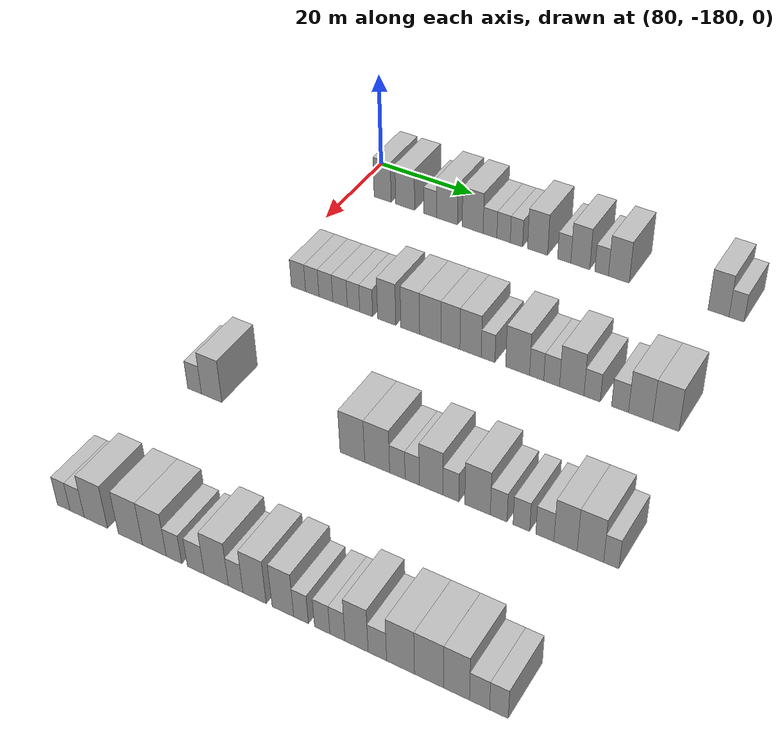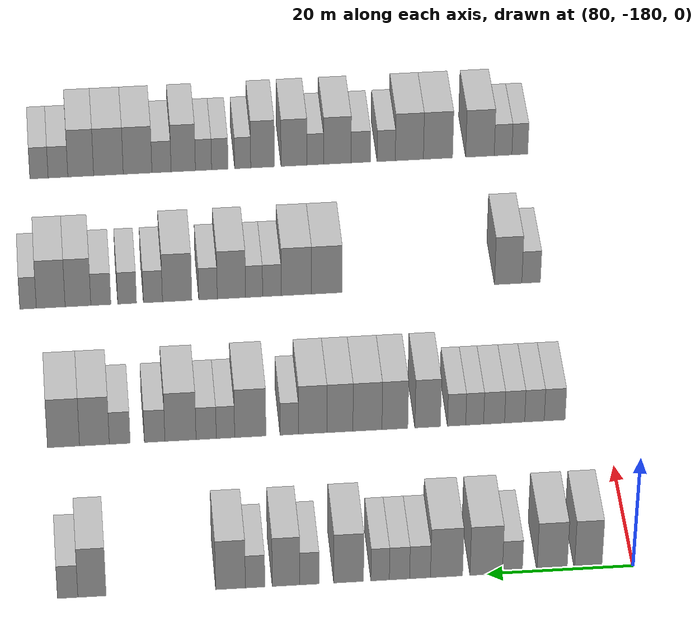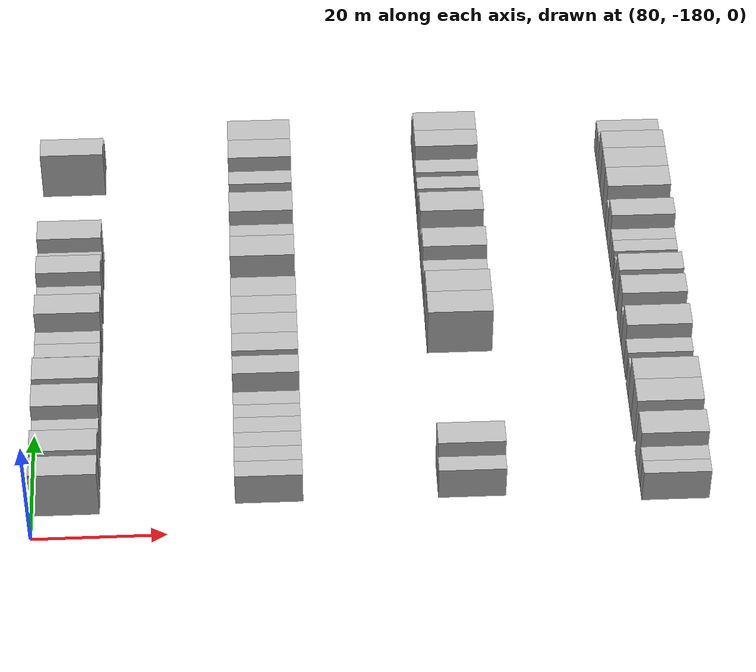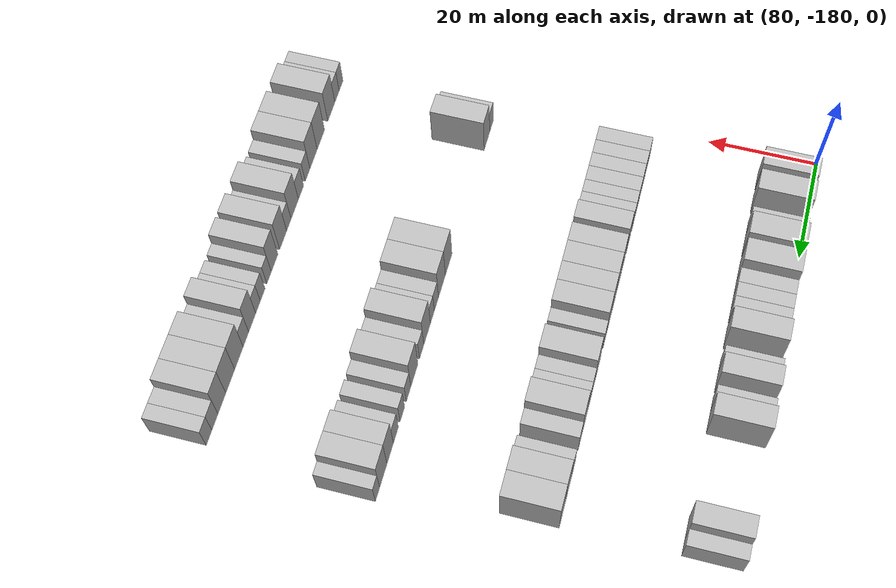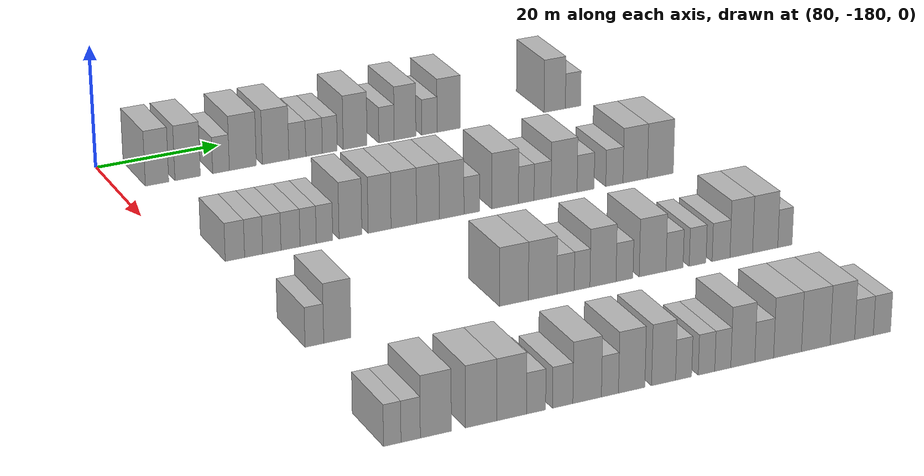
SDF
<sdf version="1.6">
 <world name="default">
  <model name="building_534">
   <static>1</static>
   <pose>85.0000 -173.7555 0 0.000000 0.000000 0.000000</pose>
   <link name="link">
    <pose>0 0 4.50 0 0 0</pose>
    <collision name="collision"><geometry><box><size>10.0000 3.7545 9.0000</size></box></geometry></collision>
    <visual name="visual">
     <cast_shadows>0</cast_shadows>
     <geometry><box><size>10.0000 3.7545 9.0000</size></box></geometry>
     <material>
      <script>
       <uri>model://HANNAS_wall/materials/scripts</uri>
       <uri>model://HANNAS_wall/materials/textures</uri>
       <name>vrc/HANNAS_wall</name>
      </script>
     </material>
    </visual>
   </link>
  </model>
  <model name="building_535">
   <static>1</static>
   <pose>85.0000 -168.8185 0 0.000000 0.000000 0.000000</pose>
   <link name="link">
    <pose>0 0 4.50 0 0 0</pose>
    <collision name="collision"><geometry><box><size>10.0000 4.1195 9.0000</size></box></geometry></collision>
    <visual name="visual">
     <cast_shadows>0</cast_shadows>
     <geometry><box><size>10.0000 4.1195 9.0000</size></box></geometry>
     <material>
      <script>
       <uri>model://HANNAS_wall/materials/scripts</uri>
       <uri>model://HANNAS_wall/materials/textures</uri>
       <name>vrc/HANNAS_wall</name>
      </script>
     </material>
    </visual>
   </link>
  </model>
  <model name="building_536">
   <static>1</static>
   <pose>85.0000 -163.3933 0 0.000000 0.000000 0.000000</pose>
   <link name="link">
    <pose>0 0 3.00 0 0 0</pose>
    <collision name="collision"><geometry><box><size>10.0000 2.7308 6.0000</size></box></geometry></collision>
    <visual name="visual">
     <cast_shadows>0</cast_shadows>
     <geometry><box><size>10.0000 2.7308 6.0000</size></box></geometry>
     <material>
      <script>
       <uri>model://HANNAS_wall/materials/scripts</uri>
       <uri>model://HANNAS_wall/materials/textures</uri>
       <name>vrc/HANNAS_wall</name>
      </script>
     </material>
    </visual>
   </link>
  </model>
  <model name="building_537">
   <static>1</static>
   <pose>85.0000 -159.8142 0 0.000000 0.000000 0.000000</pose>
   <link name="link">
    <pose>0 0 4.50 0 0 0</pose>
    <collision name="collision"><geometry><box><size>10.0000 4.4275 9.0000</size></box></geometry></collision>
    <visual name="visual">
     <cast_shadows>0</cast_shadows>
     <geometry><box><size>10.0000 4.4275 9.0000</size></box></geometry>
     <material>
      <script>
       <uri>model://HANNAS_wall/materials/scripts</uri>
       <uri>model://HANNAS_wall/materials/textures</uri>
       <name>vrc/HANNAS_wall</name>
      </script>
     </material>
    </visual>
   </link>
  </model>
  <model name="building_538">
   <static>1</static>
   <pose>85.0000 -154.4077 0 0.000000 0.000000 0.000000</pose>
   <link name="link">
    <pose>0 0 4.50 0 0 0</pose>
    <collision name="collision"><geometry><box><size>10.0000 4.3855 9.0000</size></box></geometry></collision>
    <visual name="visual">
     <cast_shadows>0</cast_shadows>
     <geometry><box><size>10.0000 4.3855 9.0000</size></box></geometry>
     <material>
      <script>
       <uri>model://HANNAS_wall/materials/scripts</uri>
       <uri>model://HANNAS_wall/materials/textures</uri>
       <name>vrc/HANNAS_wall</name>
      </script>
     </material>
    </visual>
   </link>
  </model>
  <model name="building_539">
   <static>1</static>
   <pose>85.0000 -150.7962 0 0.000000 0.000000 0.000000</pose>
   <link name="link">
    <pose>0 0 3.00 0 0 0</pose>
    <collision name="collision"><geometry><box><size>10.0000 2.8373 6.0000</size></box></geometry></collision>
    <visual name="visual">
     <cast_shadows>0</cast_shadows>
     <geometry><box><size>10.0000 2.8373 6.0000</size></box></geometry>
     <material>
      <script>
       <uri>model://HANNAS_wall/materials/scripts</uri>
       <uri>model://HANNAS_wall/materials/textures</uri>
       <name>vrc/HANNAS_wall</name>
      </script>
     </material>
    </visual>
   </link>
  </model>
  <model name="building_540">
   <static>1</static>
   <pose>85.0000 -147.9958 0 0.000000 0.000000 0.000000</pose>
   <link name="link">
    <pose>0 0 3.00 0 0 0</pose>
    <collision name="collision"><geometry><box><size>10.0000 2.7636 6.0000</size></box></geometry></collision>
    <visual name="visual">
     <cast_shadows>0</cast_shadows>
     <geometry><box><size>10.0000 2.7636 6.0000</size></box></geometry>
     <material>
      <script>
       <uri>model://HANNAS_wall/materials/scripts</uri>
       <uri>model://HANNAS_wall/materials/textures</uri>
       <name>vrc/HANNAS_wall</name>
      </script>
     </material>
    </visual>
   </link>
  </model>
  <model name="building_541">
   <static>1</static>
   <pose>85.0000 -145.3595 0 0.000000 0.000000 0.000000</pose>
   <link name="link">
    <pose>0 0 3.00 0 0 0</pose>
    <collision name="collision"><geometry><box><size>10.0000 2.5090 6.0000</size></box></geometry></collision>
    <visual name="visual">
     <cast_shadows>0</cast_shadows>
     <geometry><box><size>10.0000 2.5090 6.0000</size></box></geometry>
     <material>
      <script>
       <uri>model://HANNAS_wall/materials/scripts</uri>
       <uri>model://HANNAS_wall/materials/textures</uri>
       <name>vrc/HANNAS_wall</name>
      </script>
     </material>
    </visual>
   </link>
  </model>
  <model name="building_542">
   <static>1</static>
   <pose>85.0000 -141.0785 0 0.000000 0.000000 0.000000</pose>
   <link name="link">
    <pose>0 0 4.50 0 0 0</pose>
    <collision name="collision"><geometry><box><size>10.0000 4.0530 9.0000</size></box></geometry></collision>
    <visual name="visual">
     <cast_shadows>0</cast_shadows>
     <geometry><box><size>10.0000 4.0530 9.0000</size></box></geometry>
     <material>
      <script>
       <uri>model://HANNAS_wall/materials/scripts</uri>
       <uri>model://HANNAS_wall/materials/textures</uri>
       <name>vrc/HANNAS_wall</name>
      </script>
     </material>
    </visual>
   </link>
  </model>
  <model name="building_543">
   <static>1</static>
   <pose>85.0000 -135.7409 0 0.000000 0.000000 0.000000</pose>
   <link name="link">
    <pose>0 0 3.00 0 0 0</pose>
    <collision name="collision"><geometry><box><size>10.0000 2.6222 6.0000</size></box></geometry></collision>
    <visual name="visual">
     <cast_shadows>0</cast_shadows>
     <geometry><box><size>10.0000 2.6222 6.0000</size></box></geometry>
     <material>
      <script>
       <uri>model://HANNAS_wall/materials/scripts</uri>
       <uri>model://HANNAS_wall/materials/textures</uri>
       <name>vrc/HANNAS_wall</name>
      </script>
     </material>
    </visual>
   </link>
  </model>
  <model name="building_544">
   <static>1</static>
   <pose>85.0000 -132.5642 0 0.000000 0.000000 0.000000</pose>
   <link name="link">
    <pose>0 0 4.50 0 0 0</pose>
    <collision name="collision"><geometry><box><size>10.0000 3.7311 9.0000</size></box></geometry></collision>
    <visual name="visual">
     <cast_shadows>0</cast_shadows>
     <geometry><box><size>10.0000 3.7311 9.0000</size></box></geometry>
     <material>
      <script>
       <uri>model://HANNAS_wall/materials/scripts</uri>
       <uri>model://HANNAS_wall/materials/textures</uri>
       <name>vrc/HANNAS_wall</name>
      </script>
     </material>
    </visual>
   </link>
  </model>
  <model name="building_545">
   <static>1</static>
   <pose>85.0000 -128.3770 0 0.000000 0.000000 0.000000</pose>
   <link name="link">
    <pose>0 0 3.00 0 0 0</pose>
    <collision name="collision"><geometry><box><size>10.0000 2.6434 6.0000</size></box></geometry></collision>
    <visual name="visual">
     <cast_shadows>0</cast_shadows>
     <geometry><box><size>10.0000 2.6434 6.0000</size></box></geometry>
     <material>
      <script>
       <uri>model://HANNAS_wall/materials/scripts</uri>
       <uri>model://HANNAS_wall/materials/textures</uri>
       <name>vrc/HANNAS_wall</name>
      </script>
     </material>
    </visual>
   </link>
  </model>
  <model name="building_546">
   <static>1</static>
   <pose>85.0000 -125.0420 0 0.000000 0.000000 0.000000</pose>
   <link name="link">
    <pose>0 0 4.50 0 0 0</pose>
    <collision name="collision"><geometry><box><size>10.0000 4.0265 9.0000</size></box></geometry></collision>
    <visual name="visual">
     <cast_shadows>0</cast_shadows>
     <geometry><box><size>10.0000 4.0265 9.0000</size></box></geometry>
     <material>
      <script>
       <uri>model://HANNAS_wall/materials/scripts</uri>
       <uri>model://HANNAS_wall/materials/textures</uri>
       <name>vrc/HANNAS_wall</name>
      </script>
     </material>
    </visual>
   </link>
  </model>
  <model name="building_547">
   <static>1</static>
   <pose>85.0000 -106.3076 0 0.000000 0.000000 0.000000</pose>
   <link name="link">
    <pose>0 0 4.50 0 0 0</pose>
    <collision name="collision"><geometry><box><size>10.0000 3.8141 9.0000</size></box></geometry></collision>
    <visual name="visual">
     <cast_shadows>0</cast_shadows>
     <geometry><box><size>10.0000 3.8141 9.0000</size></box></geometry>
     <material>
      <script>
       <uri>model://HANNAS_wall/materials/scripts</uri>
       <uri>model://HANNAS_wall/materials/textures</uri>
       <name>vrc/HANNAS_wall</name>
      </script>
     </material>
    </visual>
   </link>
  </model>
  <model name="building_548">
   <static>1</static>
   <pose>85.0000 -103.0252 0 0.000000 0.000000 0.000000</pose>
   <link name="link">
    <pose>0 0 3.00 0 0 0</pose>
    <collision name="collision"><geometry><box><size>10.0000 2.7507 6.0000</size></box></geometry></collision>
    <visual name="visual">
     <cast_shadows>0</cast_shadows>
     <geometry><box><size>10.0000 2.7507 6.0000</size></box></geometry>
     <material>
      <script>
       <uri>model://HANNAS_wall/materials/scripts</uri>
       <uri>model://HANNAS_wall/materials/textures</uri>
       <name>vrc/HANNAS_wall</name>
      </script>
     </material>
    </visual>
   </link>
  </model>
  <model name="building_763">
   <static>1</static>
   <pose>115.0000 -172.9083 0 0.000000 0.000000 0.000000</pose>
   <link name="link">
    <pose>0 0 3.00 0 0 0</pose>
    <collision name="collision"><geometry><box><size>10.0000 2.9768 6.0000</size></box></geometry></collision>
    <visual name="visual">
     <cast_shadows>0</cast_shadows>
     <geometry><box><size>10.0000 2.9768 6.0000</size></box></geometry>
     <material>
      <script>
       <uri>model://HANNAS_wall/materials/scripts</uri>
       <uri>model://HANNAS_wall/materials/textures</uri>
       <name>vrc/HANNAS_wall</name>
      </script>
     </material>
    </visual>
   </link>
  </model>
  <model name="building_764">
   <static>1</static>
   <pose>115.0000 -170.0275 0 0.000000 0.000000 0.000000</pose>
   <link name="link">
    <pose>0 0 3.00 0 0 0</pose>
    <collision name="collision"><geometry><box><size>10.0000 2.7848 6.0000</size></box></geometry></collision>
    <visual name="visual">
     <cast_shadows>0</cast_shadows>
     <geometry><box><size>10.0000 2.7848 6.0000</size></box></geometry>
     <material>
      <script>
       <uri>model://HANNAS_wall/materials/scripts</uri>
       <uri>model://HANNAS_wall/materials/textures</uri>
       <name>vrc/HANNAS_wall</name>
      </script>
     </material>
    </visual>
   </link>
  </model>
  <model name="building_765">
   <static>1</static>
   <pose>115.0000 -167.2041 0 0.000000 0.000000 0.000000</pose>
   <link name="link">
    <pose>0 0 3.00 0 0 0</pose>
    <collision name="collision"><geometry><box><size>10.0000 2.8619 6.0000</size></box></geometry></collision>
    <visual name="visual">
     <cast_shadows>0</cast_shadows>
     <geometry><box><size>10.0000 2.8619 6.0000</size></box></geometry>
     <material>
      <script>
       <uri>model://HANNAS_wall/materials/scripts</uri>
       <uri>model://HANNAS_wall/materials/textures</uri>
       <name>vrc/HANNAS_wall</name>
      </script>
     </material>
    </visual>
   </link>
  </model>
  <model name="building_766">
   <static>1</static>
   <pose>115.0000 -164.2832 0 0.000000 0.000000 0.000000</pose>
   <link name="link">
    <pose>0 0 3.00 0 0 0</pose>
    <collision name="collision"><geometry><box><size>10.0000 2.9800 6.0000</size></box></geometry></collision>
    <visual name="visual">
     <cast_shadows>0</cast_shadows>
     <geometry><box><size>10.0000 2.9800 6.0000</size></box></geometry>
     <material>
      <script>
       <uri>model://HANNAS_wall/materials/scripts</uri>
       <uri>model://HANNAS_wall/materials/textures</uri>
       <name>vrc/HANNAS_wall</name>
      </script>
     </material>
    </visual>
   </link>
  </model>
  <model name="building_767">
   <static>1</static>
   <pose>115.0000 -161.5236 0 0.000000 0.000000 0.000000</pose>
   <link name="link">
    <pose>0 0 3.00 0 0 0</pose>
    <collision name="collision"><geometry><box><size>10.0000 2.5392 6.0000</size></box></geometry></collision>
    <visual name="visual">
     <cast_shadows>0</cast_shadows>
     <geometry><box><size>10.0000 2.5392 6.0000</size></box></geometry>
     <material>
      <script>
       <uri>model://HANNAS_wall/materials/scripts</uri>
       <uri>model://HANNAS_wall/materials/textures</uri>
       <name>vrc/HANNAS_wall</name>
      </script>
     </material>
    </visual>
   </link>
  </model>
  <model name="building_768">
   <static>1</static>
   <pose>115.0000 -158.9571 0 0.000000 0.000000 0.000000</pose>
   <link name="link">
    <pose>0 0 3.00 0 0 0</pose>
    <collision name="collision"><geometry><box><size>10.0000 2.5939 6.0000</size></box></geometry></collision>
    <visual name="visual">
     <cast_shadows>0</cast_shadows>
     <geometry><box><size>10.0000 2.5939 6.0000</size></box></geometry>
     <material>
      <script>
       <uri>model://HANNAS_wall/materials/scripts</uri>
       <uri>model://HANNAS_wall/materials/textures</uri>
       <name>vrc/HANNAS_wall</name>
      </script>
     </material>
    </visual>
   </link>
  </model>
  <model name="building_769">
   <static>1</static>
   <pose>115.0000 -154.8506 0 0.000000 0.000000 0.000000</pose>
   <link name="link">
    <pose>0 0 4.50 0 0 0</pose>
    <collision name="collision"><geometry><box><size>10.0000 3.6191 9.0000</size></box></geometry></collision>
    <visual name="visual">
     <cast_shadows>0</cast_shadows>
     <geometry><box><size>10.0000 3.6191 9.0000</size></box></geometry>
     <material>
      <script>
       <uri>model://HANNAS_wall/materials/scripts</uri>
       <uri>model://HANNAS_wall/materials/textures</uri>
       <name>vrc/HANNAS_wall</name>
      </script>
     </material>
    </visual>
   </link>
  </model>
  <model name="building_770">
   <static>1</static>
   <pose>115.0000 -150.2071 0 0.000000 0.000000 0.000000</pose>
   <link name="link">
    <pose>0 0 4.50 0 0 0</pose>
    <collision name="collision"><geometry><box><size>10.0000 3.6678 9.0000</size></box></geometry></collision>
    <visual name="visual">
     <cast_shadows>0</cast_shadows>
     <geometry><box><size>10.0000 3.6678 9.0000</size></box></geometry>
     <material>
      <script>
       <uri>model://HANNAS_wall/materials/scripts</uri>
       <uri>model://HANNAS_wall/materials/textures</uri>
       <name>vrc/HANNAS_wall</name>
      </script>
     </material>
    </visual>
   </link>
  </model>
  <model name="building_771">
   <static>1</static>
   <pose>115.0000 -146.3153 0 0.000000 0.000000 0.000000</pose>
   <link name="link">
    <pose>0 0 4.50 0 0 0</pose>
    <collision name="collision"><geometry><box><size>10.0000 4.1157 9.0000</size></box></geometry></collision>
    <visual name="visual">
     <cast_shadows>0</cast_shadows>
     <geometry><box><size>10.0000 4.1157 9.0000</size></box></geometry>
     <material>
      <script>
       <uri>model://HANNAS_wall/materials/scripts</uri>
       <uri>model://HANNAS_wall/materials/textures</uri>
       <name>vrc/HANNAS_wall</name>
      </script>
     </material>
    </visual>
   </link>
  </model>
  <model name="building_772">
   <static>1</static>
   <pose>115.0000 -142.4203 0 0.000000 0.000000 0.000000</pose>
   <link name="link">
    <pose>0 0 4.50 0 0 0</pose>
    <collision name="collision"><geometry><box><size>10.0000 3.6743 9.0000</size></box></geometry></collision>
    <visual name="visual">
     <cast_shadows>0</cast_shadows>
     <geometry><box><size>10.0000 3.6743 9.0000</size></box></geometry>
     <material>
      <script>
       <uri>model://HANNAS_wall/materials/scripts</uri>
       <uri>model://HANNAS_wall/materials/textures</uri>
       <name>vrc/HANNAS_wall</name>
      </script>
     </material>
    </visual>
   </link>
  </model>
  <model name="building_773">
   <static>1</static>
   <pose>115.0000 -138.5661 0 0.000000 0.000000 0.000000</pose>
   <link name="link">
    <pose>0 0 4.50 0 0 0</pose>
    <collision name="collision"><geometry><box><size>10.0000 4.0339 9.0000</size></box></geometry></collision>
    <visual name="visual">
     <cast_shadows>0</cast_shadows>
     <geometry><box><size>10.0000 4.0339 9.0000</size></box></geometry>
     <material>
      <script>
       <uri>model://HANNAS_wall/materials/scripts</uri>
       <uri>model://HANNAS_wall/materials/textures</uri>
       <name>vrc/HANNAS_wall</name>
      </script>
     </material>
    </visual>
   </link>
  </model>
  <model name="building_774">
   <static>1</static>
   <pose>115.0000 -135.2565 0 0.000000 0.000000 0.000000</pose>
   <link name="link">
    <pose>0 0 3.00 0 0 0</pose>
    <collision name="collision"><geometry><box><size>10.0000 2.5853 6.0000</size></box></geometry></collision>
    <visual name="visual">
     <cast_shadows>0</cast_shadows>
     <geometry><box><size>10.0000 2.5853 6.0000</size></box></geometry>
     <material>
      <script>
       <uri>model://HANNAS_wall/materials/scripts</uri>
       <uri>model://HANNAS_wall/materials/textures</uri>
       <name>vrc/HANNAS_wall</name>
      </script>
     </material>
    </visual>
   </link>
  </model>
  <model name="building_775">
   <static>1</static>
   <pose>115.0000 -129.7553 0 0.000000 0.000000 0.000000</pose>
   <link name="link">
    <pose>0 0 4.50 0 0 0</pose>
    <collision name="collision"><geometry><box><size>10.0000 4.4172 9.0000</size></box></geometry></collision>
    <visual name="visual">
     <cast_shadows>0</cast_shadows>
     <geometry><box><size>10.0000 4.4172 9.0000</size></box></geometry>
     <material>
      <script>
       <uri>model://HANNAS_wall/materials/scripts</uri>
       <uri>model://HANNAS_wall/materials/textures</uri>
       <name>vrc/HANNAS_wall</name>
      </script>
     </material>
    </visual>
   </link>
  </model>
  <model name="building_776">
   <static>1</static>
   <pose>115.0000 -126.2490 0 0.000000 0.000000 0.000000</pose>
   <link name="link">
    <pose>0 0 3.00 0 0 0</pose>
    <collision name="collision"><geometry><box><size>10.0000 2.5955 6.0000</size></box></geometry></collision>
    <visual name="visual">
     <cast_shadows>0</cast_shadows>
     <geometry><box><size>10.0000 2.5955 6.0000</size></box></geometry>
     <material>
      <script>
       <uri>model://HANNAS_wall/materials/scripts</uri>
       <uri>model://HANNAS_wall/materials/textures</uri>
       <name>vrc/HANNAS_wall</name>
      </script>
     </material>
    </visual>
   </link>
  </model>
  <model name="building_777">
   <static>1</static>
   <pose>115.0000 -123.5253 0 0.000000 0.000000 0.000000</pose>
   <link name="link">
    <pose>0 0 3.00 0 0 0</pose>
    <collision name="collision"><geometry><box><size>10.0000 2.8518 6.0000</size></box></geometry></collision>
    <visual name="visual">
     <cast_shadows>0</cast_shadows>
     <geometry><box><size>10.0000 2.8518 6.0000</size></box></geometry>
     <material>
      <script>
       <uri>model://HANNAS_wall/materials/scripts</uri>
       <uri>model://HANNAS_wall/materials/textures</uri>
       <name>vrc/HANNAS_wall</name>
      </script>
     </material>
    </visual>
   </link>
  </model>
  <model name="building_778">
   <static>1</static>
   <pose>115.0000 -119.9063 0 0.000000 0.000000 0.000000</pose>
   <link name="link">
    <pose>0 0 4.50 0 0 0</pose>
    <collision name="collision"><geometry><box><size>10.0000 4.3862 9.0000</size></box></geometry></collision>
    <visual name="visual">
     <cast_shadows>0</cast_shadows>
     <geometry><box><size>10.0000 4.3862 9.0000</size></box></geometry>
     <material>
      <script>
       <uri>model://HANNAS_wall/materials/scripts</uri>
       <uri>model://HANNAS_wall/materials/textures</uri>
       <name>vrc/HANNAS_wall</name>
      </script>
     </material>
    </visual>
   </link>
  </model>
  <model name="building_779">
   <static>1</static>
   <pose>115.0000 -116.2729 0 0.000000 0.000000 0.000000</pose>
   <link name="link">
    <pose>0 0 3.00 0 0 0</pose>
    <collision name="collision"><geometry><box><size>10.0000 2.8807 6.0000</size></box></geometry></collision>
    <visual name="visual">
     <cast_shadows>0</cast_shadows>
     <geometry><box><size>10.0000 2.8807 6.0000</size></box></geometry>
     <material>
      <script>
       <uri>model://HANNAS_wall/materials/scripts</uri>
       <uri>model://HANNAS_wall/materials/textures</uri>
       <name>vrc/HANNAS_wall</name>
      </script>
     </material>
    </visual>
   </link>
  </model>
  <model name="building_780">
   <static>1</static>
   <pose>115.0000 -111.3629 0 0.000000 0.000000 0.000000</pose>
   <link name="link">
    <pose>0 0 3.00 0 0 0</pose>
    <collision name="collision"><geometry><box><size>10.0000 2.9392 6.0000</size></box></geometry></collision>
    <visual name="visual">
     <cast_shadows>0</cast_shadows>
     <geometry><box><size>10.0000 2.9392 6.0000</size></box></geometry>
     <material>
      <script>
       <uri>model://HANNAS_wall/materials/scripts</uri>
       <uri>model://HANNAS_wall/materials/textures</uri>
       <name>vrc/HANNAS_wall</name>
      </script>
     </material>
    </visual>
   </link>
  </model>
  <model name="building_781">
   <static>1</static>
   <pose>115.0000 -107.8028 0 0.000000 0.000000 0.000000</pose>
   <link name="link">
    <pose>0 0 4.50 0 0 0</pose>
    <collision name="collision"><geometry><box><size>10.0000 4.1810 9.0000</size></box></geometry></collision>
    <visual name="visual">
     <cast_shadows>0</cast_shadows>
     <geometry><box><size>10.0000 4.1810 9.0000</size></box></geometry>
     <material>
      <script>
       <uri>model://HANNAS_wall/materials/scripts</uri>
       <uri>model://HANNAS_wall/materials/textures</uri>
       <name>vrc/HANNAS_wall</name>
      </script>
     </material>
    </visual>
   </link>
  </model>
  <model name="building_782">
   <static>1</static>
   <pose>115.0000 -103.4639 0 0.000000 0.000000 0.000000</pose>
   <link name="link">
    <pose>0 0 4.50 0 0 0</pose>
    <collision name="collision"><geometry><box><size>10.0000 4.4968 9.0000</size></box></geometry></collision>
    <visual name="visual">
     <cast_shadows>0</cast_shadows>
     <geometry><box><size>10.0000 4.4968 9.0000</size></box></geometry>
     <material>
      <script>
       <uri>model://HANNAS_wall/materials/scripts</uri>
       <uri>model://HANNAS_wall/materials/textures</uri>
       <name>vrc/HANNAS_wall</name>
      </script>
     </material>
    </visual>
   </link>
  </model>
  <model name="building_996">
   <static>1</static>
   <pose>145.0000 -173.1514 0 0.000000 0.000000 0.000000</pose>
   <link name="link">
    <pose>0 0 3.00 0 0 0</pose>
    <collision name="collision"><geometry><box><size>10.0000 2.7469 6.0000</size></box></geometry></collision>
    <visual name="visual">
     <cast_shadows>0</cast_shadows>
     <geometry><box><size>10.0000 2.7469 6.0000</size></box></geometry>
     <material>
      <script>
       <uri>model://HANNAS_wall/materials/scripts</uri>
       <uri>model://HANNAS_wall/materials/textures</uri>
       <name>vrc/HANNAS_wall</name>
      </script>
     </material>
    </visual>
   </link>
  </model>
  <model name="building_997">
   <static>1</static>
   <pose>145.0000 -169.7583 0 0.000000 0.000000 0.000000</pose>
   <link name="link">
    <pose>0 0 4.50 0 0 0</pose>
    <collision name="collision"><geometry><box><size>10.0000 4.0393 9.0000</size></box></geometry></collision>
    <visual name="visual">
     <cast_shadows>0</cast_shadows>
     <geometry><box><size>10.0000 4.0393 9.0000</size></box></geometry>
     <material>
      <script>
       <uri>model://HANNAS_wall/materials/scripts</uri>
       <uri>model://HANNAS_wall/materials/textures</uri>
       <name>vrc/HANNAS_wall</name>
      </script>
     </material>
    </visual>
   </link>
  </model>
  <model name="building_998">
   <static>1</static>
   <pose>145.0000 -143.0257 0 0.000000 0.000000 0.000000</pose>
   <link name="link">
    <pose>0 0 4.50 0 0 0</pose>
    <collision name="collision"><geometry><box><size>10.0000 4.4754 9.0000</size></box></geometry></collision>
    <visual name="visual">
     <cast_shadows>0</cast_shadows>
     <geometry><box><size>10.0000 4.4754 9.0000</size></box></geometry>
     <material>
      <script>
       <uri>model://HANNAS_wall/materials/scripts</uri>
       <uri>model://HANNAS_wall/materials/textures</uri>
       <name>vrc/HANNAS_wall</name>
      </script>
     </material>
    </visual>
   </link>
  </model>
  <model name="building_999">
   <static>1</static>
   <pose>145.0000 -138.5525 0 0.000000 0.000000 0.000000</pose>
   <link name="link">
    <pose>0 0 4.50 0 0 0</pose>
    <collision name="collision"><geometry><box><size>10.0000 4.4709 9.0000</size></box></geometry></collision>
    <visual name="visual">
     <cast_shadows>0</cast_shadows>
     <geometry><box><size>10.0000 4.4709 9.0000</size></box></geometry>
     <material>
      <script>
       <uri>model://HANNAS_wall/materials/scripts</uri>
       <uri>model://HANNAS_wall/materials/textures</uri>
       <name>vrc/HANNAS_wall</name>
      </script>
     </material>
    </visual>
   </link>
  </model>
  <model name="building_1000">
   <static>1</static>
   <pose>145.0000 -134.9532 0 0.000000 0.000000 0.000000</pose>
   <link name="link">
    <pose>0 0 3.00 0 0 0</pose>
    <collision name="collision"><geometry><box><size>10.0000 2.7277 6.0000</size></box></geometry></collision>
    <visual name="visual">
     <cast_shadows>0</cast_shadows>
     <geometry><box><size>10.0000 2.7277 6.0000</size></box></geometry>
     <material>
      <script>
       <uri>model://HANNAS_wall/materials/scripts</uri>
       <uri>model://HANNAS_wall/materials/textures</uri>
       <name>vrc/HANNAS_wall</name>
      </script>
     </material>
    </visual>
   </link>
  </model>
  <model name="building_1001">
   <static>1</static>
   <pose>145.0000 -132.3440 0 0.000000 0.000000 0.000000</pose>
   <link name="link">
    <pose>0 0 3.00 0 0 0</pose>
    <collision name="collision"><geometry><box><size>10.0000 2.4908 6.0000</size></box></geometry></collision>
    <visual name="visual">
     <cast_shadows>0</cast_shadows>
     <geometry><box><size>10.0000 2.4908 6.0000</size></box></geometry>
     <material>
      <script>
       <uri>model://HANNAS_wall/materials/scripts</uri>
       <uri>model://HANNAS_wall/materials/textures</uri>
       <name>vrc/HANNAS_wall</name>
      </script>
     </material>
    </visual>
   </link>
  </model>
  <model name="building_1002">
   <static>1</static>
   <pose>145.0000 -129.0224 0 0.000000 0.000000 0.000000</pose>
   <link name="link">
    <pose>0 0 4.50 0 0 0</pose>
    <collision name="collision"><geometry><box><size>10.0000 4.1523 9.0000</size></box></geometry></collision>
    <visual name="visual">
     <cast_shadows>0</cast_shadows>
     <geometry><box><size>10.0000 4.1523 9.0000</size></box></geometry>
     <material>
      <script>
       <uri>model://HANNAS_wall/materials/scripts</uri>
       <uri>model://HANNAS_wall/materials/textures</uri>
       <name>vrc/HANNAS_wall</name>
      </script>
     </material>
    </visual>
   </link>
  </model>
  <model name="building_1003">
   <static>1</static>
   <pose>145.0000 -125.5873 0 0.000000 0.000000 0.000000</pose>
   <link name="link">
    <pose>0 0 3.00 0 0 0</pose>
    <collision name="collision"><geometry><box><size>10.0000 2.7180 6.0000</size></box></geometry></collision>
    <visual name="visual">
     <cast_shadows>0</cast_shadows>
     <geometry><box><size>10.0000 2.7180 6.0000</size></box></geometry>
     <material>
      <script>
       <uri>model://HANNAS_wall/materials/scripts</uri>
       <uri>model://HANNAS_wall/materials/textures</uri>
       <name>vrc/HANNAS_wall</name>
      </script>
     </material>
    </visual>
   </link>
  </model>
  <model name="building_1004">
   <static>1</static>
   <pose>145.0000 -121.0702 0 0.000000 0.000000 0.000000</pose>
   <link name="link">
    <pose>0 0 4.50 0 0 0</pose>
    <collision name="collision"><geometry><box><size>10.0000 4.3160 9.0000</size></box></geometry></collision>
    <visual name="visual">
     <cast_shadows>0</cast_shadows>
     <geometry><box><size>10.0000 4.3160 9.0000</size></box></geometry>
     <material>
      <script>
       <uri>model://HANNAS_wall/materials/scripts</uri>
       <uri>model://HANNAS_wall/materials/textures</uri>
       <name>vrc/HANNAS_wall</name>
      </script>
     </material>
    </visual>
   </link>
  </model>
  <model name="building_1005">
   <static>1</static>
   <pose>145.0000 -117.5188 0 0.000000 0.000000 0.000000</pose>
   <link name="link">
    <pose>0 0 3.00 0 0 0</pose>
    <collision name="collision"><geometry><box><size>10.0000 2.7869 6.0000</size></box></geometry></collision>
    <visual name="visual">
     <cast_shadows>0</cast_shadows>
     <geometry><box><size>10.0000 2.7869 6.0000</size></box></geometry>
     <material>
      <script>
       <uri>model://HANNAS_wall/materials/scripts</uri>
       <uri>model://HANNAS_wall/materials/textures</uri>
       <name>vrc/HANNAS_wall</name>
      </script>
     </material>
    </visual>
   </link>
  </model>
  <model name="building_1006">
   <static>1</static>
   <pose>145.0000 -113.7520 0 0.000000 0.000000 0.000000</pose>
   <link name="link">
    <pose>0 0 3.00 0 0 0</pose>
    <collision name="collision"><geometry><box><size>10.0000 2.7466 6.0000</size></box></geometry></collision>
    <visual name="visual">
     <cast_shadows>0</cast_shadows>
     <geometry><box><size>10.0000 2.7466 6.0000</size></box></geometry>
     <material>
      <script>
       <uri>model://HANNAS_wall/materials/scripts</uri>
       <uri>model://HANNAS_wall/materials/textures</uri>
       <name>vrc/HANNAS_wall</name>
      </script>
     </material>
    </visual>
   </link>
  </model>
  <model name="building_1007">
   <static>1</static>
   <pose>145.0000 -109.9124 0 0.000000 0.000000 0.000000</pose>
   <link name="link">
    <pose>0 0 3.00 0 0 0</pose>
    <collision name="collision"><geometry><box><size>10.0000 2.9327 6.0000</size></box></geometry></collision>
    <visual name="visual">
     <cast_shadows>0</cast_shadows>
     <geometry><box><size>10.0000 2.9327 6.0000</size></box></geometry>
     <material>
      <script>
       <uri>model://HANNAS_wall/materials/scripts</uri>
       <uri>model://HANNAS_wall/materials/textures</uri>
       <name>vrc/HANNAS_wall</name>
      </script>
     </material>
    </visual>
   </link>
  </model>
  <model name="building_1008">
   <static>1</static>
   <pose>145.0000 -106.5708 0 0.000000 0.000000 0.000000</pose>
   <link name="link">
    <pose>0 0 4.50 0 0 0</pose>
    <collision name="collision"><geometry><box><size>10.0000 3.7504 9.0000</size></box></geometry></collision>
    <visual name="visual">
     <cast_shadows>0</cast_shadows>
     <geometry><box><size>10.0000 3.7504 9.0000</size></box></geometry>
     <material>
      <script>
       <uri>model://HANNAS_wall/materials/scripts</uri>
       <uri>model://HANNAS_wall/materials/textures</uri>
       <name>vrc/HANNAS_wall</name>
      </script>
     </material>
    </visual>
   </link>
  </model>
  <model name="building_1009">
   <static>1</static>
   <pose>145.0000 -102.5962 0 0.000000 0.000000 0.000000</pose>
   <link name="link">
    <pose>0 0 4.50 0 0 0</pose>
    <collision name="collision"><geometry><box><size>10.0000 4.1987 9.0000</size></box></geometry></collision>
    <visual name="visual">
     <cast_shadows>0</cast_shadows>
     <geometry><box><size>10.0000 4.1987 9.0000</size></box></geometry>
     <material>
      <script>
       <uri>model://HANNAS_wall/materials/scripts</uri>
       <uri>model://HANNAS_wall/materials/textures</uri>
       <name>vrc/HANNAS_wall</name>
      </script>
     </material>
    </visual>
   </link>
  </model>
  <model name="building_1010">
   <static>1</static>
   <pose>145.0000 -99.2933 0 0.000000 0.000000 0.000000</pose>
   <link name="link">
    <pose>0 0 3.00 0 0 0</pose>
    <collision name="collision"><geometry><box><size>10.0000 2.4072 6.0000</size></box></geometry></collision>
    <visual name="visual">
     <cast_shadows>0</cast_shadows>
     <geometry><box><size>10.0000 2.4072 6.0000</size></box></geometry>
     <material>
      <script>
       <uri>model://HANNAS_wall/materials/scripts</uri>
       <uri>model://HANNAS_wall/materials/textures</uri>
       <name>vrc/HANNAS_wall</name>
      </script>
     </material>
    </visual>
   </link>
  </model>
  <model name="building_1207">
   <static>1</static>
   <pose>175.0000 -175.0108 0 0.000000 0.000000 0.000000</pose>
   <link name="link">
    <pose>0 0 3.00 0 0 0</pose>
    <collision name="collision"><geometry><box><size>10.0000 2.4385 6.0000</size></box></geometry></collision>
    <visual name="visual">
     <cast_shadows>0</cast_shadows>
     <geometry><box><size>10.0000 2.4385 6.0000</size></box></geometry>
     <material>
      <script>
       <uri>model://HANNAS_wall/materials/scripts</uri>
       <uri>model://HANNAS_wall/materials/textures</uri>
       <name>vrc/HANNAS_wall</name>
      </script>
     </material>
    </visual>
   </link>
  </model>
  <model name="building_1208">
   <static>1</static>
   <pose>175.0000 -172.4364 0 0.000000 0.000000 0.000000</pose>
   <link name="link">
    <pose>0 0 3.00 0 0 0</pose>
    <collision name="collision"><geometry><box><size>10.0000 2.7103 6.0000</size></box></geometry></collision>
    <visual name="visual">
     <cast_shadows>0</cast_shadows>
     <geometry><box><size>10.0000 2.7103 6.0000</size></box></geometry>
     <material>
      <script>
       <uri>model://HANNAS_wall/materials/scripts</uri>
       <uri>model://HANNAS_wall/materials/textures</uri>
       <name>vrc/HANNAS_wall</name>
      </script>
     </material>
    </visual>
   </link>
  </model>
  <model name="building_1209">
   <static>1</static>
   <pose>175.0000 -168.8946 0 0.000000 0.000000 0.000000</pose>
   <link name="link">
    <pose>0 0 4.50 0 0 0</pose>
    <collision name="collision"><geometry><box><size>10.0000 4.3732 9.0000</size></box></geometry></collision>
    <visual name="visual">
     <cast_shadows>0</cast_shadows>
     <geometry><box><size>10.0000 4.3732 9.0000</size></box></geometry>
     <material>
      <script>
       <uri>model://HANNAS_wall/materials/scripts</uri>
       <uri>model://HANNAS_wall/materials/textures</uri>
       <name>vrc/HANNAS_wall</name>
      </script>
     </material>
    </visual>
   </link>
  </model>
  <model name="building_1210">
   <static>1</static>
   <pose>175.0000 -162.4729 0 0.000000 0.000000 0.000000</pose>
   <link name="link">
    <pose>0 0 4.50 0 0 0</pose>
    <collision name="collision"><geometry><box><size>10.0000 4.4701 9.0000</size></box></geometry></collision>
    <visual name="visual">
     <cast_shadows>0</cast_shadows>
     <geometry><box><size>10.0000 4.4701 9.0000</size></box></geometry>
     <material>
      <script>
       <uri>model://HANNAS_wall/materials/scripts</uri>
       <uri>model://HANNAS_wall/materials/textures</uri>
       <name>vrc/HANNAS_wall</name>
      </script>
     </material>
    </visual>
   </link>
  </model>
  <model name="building_1211">
   <static>1</static>
   <pose>175.0000 -158.0861 0 0.000000 0.000000 0.000000</pose>
   <link name="link">
    <pose>0 0 4.50 0 0 0</pose>
    <collision name="collision"><geometry><box><size>10.0000 4.3035 9.0000</size></box></geometry></collision>
    <visual name="visual">
     <cast_shadows>0</cast_shadows>
     <geometry><box><size>10.0000 4.3035 9.0000</size></box></geometry>
     <material>
      <script>
       <uri>model://HANNAS_wall/materials/scripts</uri>
       <uri>model://HANNAS_wall/materials/textures</uri>
       <name>vrc/HANNAS_wall</name>
      </script>
     </material>
    </visual>
   </link>
  </model>
  <model name="building_1212">
   <static>1</static>
   <pose>175.0000 -154.5450 0 0.000000 0.000000 0.000000</pose>
   <link name="link">
    <pose>0 0 3.00 0 0 0</pose>
    <collision name="collision"><geometry><box><size>10.0000 2.7788 6.0000</size></box></geometry></collision>
    <visual name="visual">
     <cast_shadows>0</cast_shadows>
     <geometry><box><size>10.0000 2.7788 6.0000</size></box></geometry>
     <material>
      <script>
       <uri>model://HANNAS_wall/materials/scripts</uri>
       <uri>model://HANNAS_wall/materials/textures</uri>
       <name>vrc/HANNAS_wall</name>
      </script>
     </material>
    </visual>
   </link>
  </model>
  <model name="building_1213">
   <static>1</static>
   <pose>175.0000 -150.6676 0 0.000000 0.000000 0.000000</pose>
   <link name="link">
    <pose>0 0 3.00 0 0 0</pose>
    <collision name="collision"><geometry><box><size>10.0000 2.9761 6.0000</size></box></geometry></collision>
    <visual name="visual">
     <cast_shadows>0</cast_shadows>
     <geometry><box><size>10.0000 2.9761 6.0000</size></box></geometry>
     <material>
      <script>
       <uri>model://HANNAS_wall/materials/scripts</uri>
       <uri>model://HANNAS_wall/materials/textures</uri>
       <name>vrc/HANNAS_wall</name>
      </script>
     </material>
    </visual>
   </link>
  </model>
  <model name="building_1214">
   <static>1</static>
   <pose>175.0000 -147.0716 0 0.000000 0.000000 0.000000</pose>
   <link name="link">
    <pose>0 0 4.50 0 0 0</pose>
    <collision name="collision"><geometry><box><size>10.0000 4.2159 9.0000</size></box></geometry></collision>
    <visual name="visual">
     <cast_shadows>0</cast_shadows>
     <geometry><box><size>10.0000 4.2159 9.0000</size></box></geometry>
     <material>
      <script>
       <uri>model://HANNAS_wall/materials/scripts</uri>
       <uri>model://HANNAS_wall/materials/textures</uri>
       <name>vrc/HANNAS_wall</name>
      </script>
     </material>
    </visual>
   </link>
  </model>
  <model name="building_1215">
   <static>1</static>
   <pose>175.0000 -143.7002 0 0.000000 0.000000 0.000000</pose>
   <link name="link">
    <pose>0 0 3.00 0 0 0</pose>
    <collision name="collision"><geometry><box><size>10.0000 2.5270 6.0000</size></box></geometry></collision>
    <visual name="visual">
     <cast_shadows>0</cast_shadows>
     <geometry><box><size>10.0000 2.5270 6.0000</size></box></geometry>
     <material>
      <script>
       <uri>model://HANNAS_wall/materials/scripts</uri>
       <uri>model://HANNAS_wall/materials/textures</uri>
       <name>vrc/HANNAS_wall</name>
      </script>
     </material>
    </visual>
   </link>
  </model>
  <model name="building_1216">
   <static>1</static>
   <pose>175.0000 -140.4678 0 0.000000 0.000000 0.000000</pose>
   <link name="link">
    <pose>0 0 4.50 0 0 0</pose>
    <collision name="collision"><geometry><box><size>10.0000 3.9376 9.0000</size></box></geometry></collision>
    <visual name="visual">
     <cast_shadows>0</cast_shadows>
     <geometry><box><size>10.0000 3.9376 9.0000</size></box></geometry>
     <material>
      <script>
       <uri>model://HANNAS_wall/materials/scripts</uri>
       <uri>model://HANNAS_wall/materials/textures</uri>
       <name>vrc/HANNAS_wall</name>
      </script>
     </material>
    </visual>
   </link>
  </model>
  <model name="building_1217">
   <static>1</static>
   <pose>175.0000 -135.6904 0 0.000000 0.000000 0.000000</pose>
   <link name="link">
    <pose>0 0 4.50 0 0 0</pose>
    <collision name="collision"><geometry><box><size>10.0000 3.6172 9.0000</size></box></geometry></collision>
    <visual name="visual">
     <cast_shadows>0</cast_shadows>
     <geometry><box><size>10.0000 3.6172 9.0000</size></box></geometry>
     <material>
      <script>
       <uri>model://HANNAS_wall/materials/scripts</uri>
       <uri>model://HANNAS_wall/materials/textures</uri>
       <name>vrc/HANNAS_wall</name>
      </script>
     </material>
    </visual>
   </link>
  </model>
  <model name="building_1218">
   <static>1</static>
   <pose>175.0000 -132.6616 0 0.000000 0.000000 0.000000</pose>
   <link name="link">
    <pose>0 0 3.00 0 0 0</pose>
    <collision name="collision"><geometry><box><size>10.0000 2.4403 6.0000</size></box></geometry></collision>
    <visual name="visual">
     <cast_shadows>0</cast_shadows>
     <geometry><box><size>10.0000 2.4403 6.0000</size></box></geometry>
     <material>
      <script>
       <uri>model://HANNAS_wall/materials/scripts</uri>
       <uri>model://HANNAS_wall/materials/textures</uri>
       <name>vrc/HANNAS_wall</name>
      </script>
     </material>
    </visual>
   </link>
  </model>
  <model name="building_1219">
   <static>1</static>
   <pose>175.0000 -129.1848 0 0.000000 0.000000 0.000000</pose>
   <link name="link">
    <pose>0 0 3.00 0 0 0</pose>
    <collision name="collision"><geometry><box><size>10.0000 2.5135 6.0000</size></box></geometry></collision>
    <visual name="visual">
     <cast_shadows>0</cast_shadows>
     <geometry><box><size>10.0000 2.5135 6.0000</size></box></geometry>
     <material>
      <script>
       <uri>model://HANNAS_wall/materials/scripts</uri>
       <uri>model://HANNAS_wall/materials/textures</uri>
       <name>vrc/HANNAS_wall</name>
      </script>
     </material>
    </visual>
   </link>
  </model>
  <model name="building_1220">
   <static>1</static>
   <pose>175.0000 -126.7002 0 0.000000 0.000000 0.000000</pose>
   <link name="link">
    <pose>0 0 3.00 0 0 0</pose>
    <collision name="collision"><geometry><box><size>10.0000 2.4557 6.0000</size></box></geometry></collision>
    <visual name="visual">
     <cast_shadows>0</cast_shadows>
     <geometry><box><size>10.0000 2.4557 6.0000</size></box></geometry>
     <material>
      <script>
       <uri>model://HANNAS_wall/materials/scripts</uri>
       <uri>model://HANNAS_wall/materials/textures</uri>
       <name>vrc/HANNAS_wall</name>
      </script>
     </material>
    </visual>
   </link>
  </model>
  <model name="building_1221">
   <static>1</static>
   <pose>175.0000 -123.6227 0 0.000000 0.000000 0.000000</pose>
   <link name="link">
    <pose>0 0 4.50 0 0 0</pose>
    <collision name="collision"><geometry><box><size>10.0000 3.6993 9.0000</size></box></geometry></collision>
    <visual name="visual">
     <cast_shadows>0</cast_shadows>
     <geometry><box><size>10.0000 3.6993 9.0000</size></box></geometry>
     <material>
      <script>
       <uri>model://HANNAS_wall/materials/scripts</uri>
       <uri>model://HANNAS_wall/materials/textures</uri>
       <name>vrc/HANNAS_wall</name>
      </script>
     </material>
    </visual>
   </link>
  </model>
  <model name="building_1222">
   <static>1</static>
   <pose>175.0000 -120.3170 0 0.000000 0.000000 0.000000</pose>
   <link name="link">
    <pose>0 0 3.00 0 0 0</pose>
    <collision name="collision"><geometry><box><size>10.0000 2.9121 6.0000</size></box></geometry></collision>
    <visual name="visual">
     <cast_shadows>0</cast_shadows>
     <geometry><box><size>10.0000 2.9121 6.0000</size></box></geometry>
     <material>
      <script>
       <uri>model://HANNAS_wall/materials/scripts</uri>
       <uri>model://HANNAS_wall/materials/textures</uri>
       <name>vrc/HANNAS_wall</name>
      </script>
     </material>
    </visual>
   </link>
  </model>
  <model name="building_1223">
   <static>1</static>
   <pose>175.0000 -116.6840 0 0.000000 0.000000 0.000000</pose>
   <link name="link">
    <pose>0 0 4.50 0 0 0</pose>
    <collision name="collision"><geometry><box><size>10.0000 4.3540 9.0000</size></box></geometry></collision>
    <visual name="visual">
     <cast_shadows>0</cast_shadows>
     <geometry><box><size>10.0000 4.3540 9.0000</size></box></geometry>
     <material>
      <script>
       <uri>model://HANNAS_wall/materials/scripts</uri>
       <uri>model://HANNAS_wall/materials/textures</uri>
       <name>vrc/HANNAS_wall</name>
      </script>
     </material>
    </visual>
   </link>
  </model>
  <model name="building_1224">
   <static>1</static>
   <pose>175.0000 -112.2624 0 0.000000 0.000000 0.000000</pose>
   <link name="link">
    <pose>0 0 4.50 0 0 0</pose>
    <collision name="collision"><geometry><box><size>10.0000 4.4891 9.0000</size></box></geometry></collision>
    <visual name="visual">
     <cast_shadows>0</cast_shadows>
     <geometry><box><size>10.0000 4.4891 9.0000</size></box></geometry>
     <material>
      <script>
       <uri>model://HANNAS_wall/materials/scripts</uri>
       <uri>model://HANNAS_wall/materials/textures</uri>
       <name>vrc/HANNAS_wall</name>
      </script>
     </material>
    </visual>
   </link>
  </model>
  <model name="building_1225">
   <static>1</static>
   <pose>175.0000 -108.0650 0 0.000000 0.000000 0.000000</pose>
   <link name="link">
    <pose>0 0 4.50 0 0 0</pose>
    <collision name="collision"><geometry><box><size>10.0000 3.9055 9.0000</size></box></geometry></collision>
    <visual name="visual">
     <cast_shadows>0</cast_shadows>
     <geometry><box><size>10.0000 3.9055 9.0000</size></box></geometry>
     <material>
      <script>
       <uri>model://HANNAS_wall/materials/scripts</uri>
       <uri>model://HANNAS_wall/materials/textures</uri>
       <name>vrc/HANNAS_wall</name>
      </script>
     </material>
    </visual>
   </link>
  </model>
  <model name="building_1226">
   <static>1</static>
   <pose>175.0000 -104.6209 0 0.000000 0.000000 0.000000</pose>
   <link name="link">
    <pose>0 0 3.00 0 0 0</pose>
    <collision name="collision"><geometry><box><size>10.0000 2.9828 6.0000</size></box></geometry></collision>
    <visual name="visual">
     <cast_shadows>0</cast_shadows>
     <geometry><box><size>10.0000 2.9828 6.0000</size></box></geometry>
     <material>
      <script>
       <uri>model://HANNAS_wall/materials/scripts</uri>
       <uri>model://HANNAS_wall/materials/textures</uri>
       <name>vrc/HANNAS_wall</name>
      </script>
     </material>
    </visual>
   </link>
  </model>
  <model name="building_1227">
   <static>1</static>
   <pose>175.0000 -101.7471 0 0.000000 0.000000 0.000000</pose>
   <link name="link">
    <pose>0 0 3.00 0 0 0</pose>
    <collision name="collision"><geometry><box><size>10.0000 2.7649 6.0000</size></box></geometry></collision>
    <visual name="visual">
     <cast_shadows>0</cast_shadows>
     <geometry><box><size>10.0000 2.7649 6.0000</size></box></geometry>
     <material>
      <script>
       <uri>model://HANNAS_wall/materials/scripts</uri>
       <uri>model://HANNAS_wall/materials/textures</uri>
       <name>vrc/HANNAS_wall</name>
      </script>
     </material>
    </visual>
   </link>
  </model>
 </world>
</sdf>
